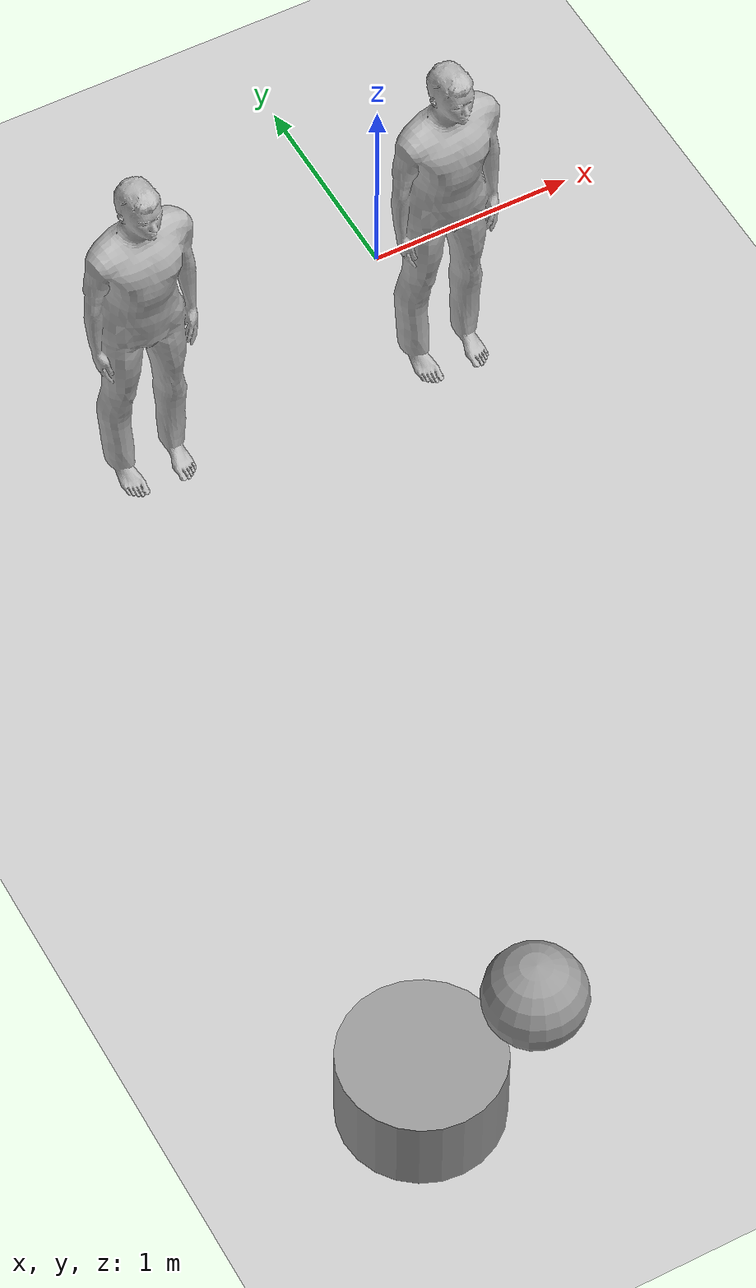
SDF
<sdf version="1.6">
 <world name="default">
  <light name="sun" type="directional">
   <pose>0 0 10 0 -0 0</pose>
   <diffuse>0.8 0.8 0.8 1</diffuse>
   <specular>0.2 0.2 0.2 1</specular>
   <attenuation>
    <range>1000</range>
    <constant>0.9</constant>
    <linear>0.01</linear>
    <quadratic>0.001</quadratic>
   </attenuation>
   <direction>-0.5 0.1 -0.9</direction>
  </light>
  <model name="ground_plane">
   <static>1</static>
   <link name="link">
    <collision name="collision">
     <geometry><plane><normal>0 0 1</normal><size>100 100</size></plane></geometry>
     <surface><friction><ode><mu>100</mu><mu2>50</mu2></ode></friction></surface>
    </collision>
    <visual name="visual">
     <cast_shadows>0</cast_shadows>
     <geometry><plane><normal>0 0 1</normal><size>100 100</size></plane></geometry>
     <material>
      <script><uri>file://media/materials/scripts/gazebo.material</uri><name>Gazebo/Grey</name></script>
     </material>
    </visual>
   </link>
  </model>
  <gravity>0 0 -9.8</gravity>
  <magnetic_field>6e-06 2.3e-05 -4.2e-05</magnetic_field>
  <atmosphere type="adiabatic"/>
  <physics name="default_physics" default="0" type="ode">
   <max_step_size>0.001</max_step_size>
   <real_time_factor>1</real_time_factor>
   <real_time_update_rate>1000</real_time_update_rate>
  </physics>
  <scene><ambient>0.4 0.4 0.4 1</ambient><background>0.7 0.7 0.7 1</background><shadows>1</shadows></scene>
  <spherical_coordinates>
   <surface_model>EARTH_WGS84</surface_model>
   <latitude_deg>0</latitude_deg>
   <longitude_deg>0</longitude_deg>
   <elevation>0</elevation>
   <heading_deg>0</heading_deg>
  </spherical_coordinates>
  <model name="person_standing">
   <link name="person_standing::link">
    <inertial>
     <pose>0 -0.1 0.95 0 -0 0</pose>
     <mass>80</mass>
     <inertia><ixx>24.88</ixx><ixy>0</ixy><ixz>0</ixz><iyy>25.73</iyy><iyz>0</iyz><izz>2.48</izz></inertia>
    </inertial>
    <collision name="bottom">
     <pose>0 -0.1 0.01 0 -0 0</pose>
     <geometry><box><size>0.5 0.35 0.02</size></box></geometry>
    </collision>
    <collision name="person">
     <pose>0 0 0.02 0.04 -0 0</pose>
     <geometry><mesh><uri>model://person_standing/meshes/standing.dae</uri></mesh></geometry>
    </collision>
    <visual name="visual">
     <pose>0 0 0.02 0.04 -0 0</pose>
     <geometry><mesh><uri>model://person_standing/meshes/standing.dae</uri></mesh></geometry>
    </visual>
    <enable_wind>1</enable_wind>
    <kinematic>1</kinematic>
   </link>
   <pose>-1.47002 -0.493364 -1e-06 -1e-06 1e-06 -0.000271</pose>
   <enable_wind>1</enable_wind>
  </model>
  <model name="person_standing_0">
   <link name="link">
    <inertial>
     <pose>0 -0.1 0.95 0 -0 0</pose>
     <mass>80</mass>
     <inertia><ixx>24.88</ixx><ixy>0</ixy><ixz>0</ixz><iyy>25.73</iyy><iyz>0</iyz><izz>2.48</izz></inertia>
    </inertial>
    <collision name="bottom">
     <pose>0 -0.1 0.01 0 -0 0</pose>
     <geometry><box><size>0.5 0.35 0.02</size></box></geometry>
    </collision>
    <collision name="person">
     <pose>0 0 0.02 0.04 -0 0</pose>
     <geometry><mesh><uri>model://person_standing/meshes/standing.dae</uri></mesh></geometry>
    </collision>
    <visual name="visual">
     <pose>0 0 0.02 0.04 -0 0</pose>
     <geometry><mesh><uri>model://person_standing/meshes/standing.dae</uri></mesh></geometry>
    </visual>
   </link>
   <pose>-0.005527 -0.546959 0 -1e-06 1e-06 -0.000811</pose>
  </model>
  <model name="U">
   <link name="link_1">
    <inertial>
     <mass>0.199345</mass>
     <inertia>
      <ixx>0.00885544</ixx>
      <ixy>0</ixy>
      <ixz>0</ixz>
      <iyy>0.00885544</iyy>
      <iyz>0</iyz>
      <izz>0.0122325</izz>
     </inertia>
    </inertial>
    <pose>-0.1983 0.09268 -0.25049 0 -0 0</pose>
    <visual name="visual">
     <geometry><cylinder><radius>0.350324</radius><length>0.406067</length></cylinder></geometry>
     <material>
      <lighting>1</lighting>
      <script><uri>file://media/materials/scripts/gazebo.material</uri><name>Gazebo/Grey</name></script>
      <shader type="pixel"><normal_map>__default__</normal_map></shader>
      <ambient>0.3 0.3 0.3 1</ambient>
      <diffuse>0.7 0.7 0.7 1</diffuse>
      <specular>0.01 0.01 0.01 1</specular>
      <emissive>0 0 0 1</emissive>
     </material>
    </visual>
    <collision name="collision">
     <geometry><cylinder><radius>0.350324</radius><length>0.406067</length></cylinder></geometry>
     <surface>
      <friction>
       <ode><mu>1</mu><mu2>1</mu2><fdir1>0 0 0</fdir1><slip1>0</slip1><slip2>0</slip2></ode>
       <torsional>
        <coefficient>1</coefficient>
        <patch_radius>0</patch_radius>
        <surface_radius>0</surface_radius>
        <use_patch_radius>1</use_patch_radius>
        <ode><slip>0</slip></ode>
       </torsional>
      </friction>
      <bounce><restitution_coefficient>0</restitution_coefficient><threshold>1e+06</threshold></bounce>
      <contact>
       <collide_without_contact>0</collide_without_contact>
       <collide_without_contact_bitmask>1</collide_without_contact_bitmask>
       <collide_bitmask>1</collide_bitmask>
       <ode>
        <soft_cfm>0</soft_cfm>
        <soft_erp>0.2</soft_erp>
        <kp>1e+13</kp>
        <kd>1</kd>
        <max_vel>0.01</max_vel>
        <min_depth>0</min_depth>
       </ode>
       <bullet>
        <split_impulse>1</split_impulse>
        <split_impulse_penetration_threshold>-0.01</split_impulse_penetration_threshold>
        <soft_cfm>0</soft_cfm>
        <soft_erp>0.2</soft_erp>
        <kp>1e+13</kp>
        <kd>1</kd>
       </bullet>
      </contact>
     </surface>
    </collision>
   </link>
   <link name="link_2">
    <inertial>
     <mass>0.0820995</mass>
     <inertia>
      <ixx>0.0015508</ixx>
      <ixy>0</ixy>
      <ixz>0</ixz>
      <iyy>0.0015508</iyy>
      <iyz>0</iyz>
      <izz>0.0015508</izz>
     </inertia>
    </inertial>
    <pose>0.1983 -0.09268 0.35049 0 -0 0</pose>
    <visual name="visual">
     <geometry><sphere><radius>0.217309</radius></sphere></geometry>
     <material>
      <lighting>1</lighting>
      <script><uri>file://media/materials/scripts/gazebo.material</uri><name>Gazebo/Grey</name></script>
      <shader type="pixel"><normal_map>__default__</normal_map></shader>
      <ambient>0.3 0.3 0.3 1</ambient>
      <diffuse>0.7 0.7 0.7 1</diffuse>
      <specular>0.01 0.01 0.01 1</specular>
      <emissive>0 0 0 1</emissive>
     </material>
    </visual>
    <collision name="collision">
     <geometry><sphere><radius>0.217309</radius></sphere></geometry>
     <surface>
      <friction>
       <ode><mu>1</mu><mu2>1</mu2><fdir1>0 0 0</fdir1><slip1>0</slip1><slip2>0</slip2></ode>
       <torsional>
        <coefficient>1</coefficient>
        <patch_radius>0</patch_radius>
        <surface_radius>0</surface_radius>
        <use_patch_radius>1</use_patch_radius>
        <ode><slip>0</slip></ode>
       </torsional>
      </friction>
      <bounce><restitution_coefficient>0</restitution_coefficient><threshold>1e+06</threshold></bounce>
      <contact>
       <collide_without_contact>0</collide_without_contact>
       <collide_without_contact_bitmask>1</collide_without_contact_bitmask>
       <collide_bitmask>1</collide_bitmask>
       <ode>
        <soft_cfm>0</soft_cfm>
        <soft_erp>0.2</soft_erp>
        <kp>1e+13</kp>
        <kd>1</kd>
        <max_vel>0.01</max_vel>
        <min_depth>0</min_depth>
       </ode>
       <bullet>
        <split_impulse>1</split_impulse>
        <split_impulse_penetration_threshold>-0.01</split_impulse_penetration_threshold>
        <soft_cfm>0</soft_cfm>
        <soft_erp>0.2</soft_erp>
        <kp>1e+13</kp>
        <kd>1</kd>
       </bullet>
      </contact>
     </surface>
    </collision>
   </link>
   <joint name="link_1_JOINT_0" type="fixed">
    <parent>link_1</parent>
    <child>link_2</child>
    <physics>
     <ode><limit><cfm>0</cfm><erp>0.2</erp></limit><suspension><cfm>0</cfm><erp>0.2</erp></suspension></ode>
    </physics>
   </joint>
   <static>0</static>
   <pose>-1.89909 -4.30237 0.75049 0 -0 0</pose>
  </model>
 </world>
</sdf>
